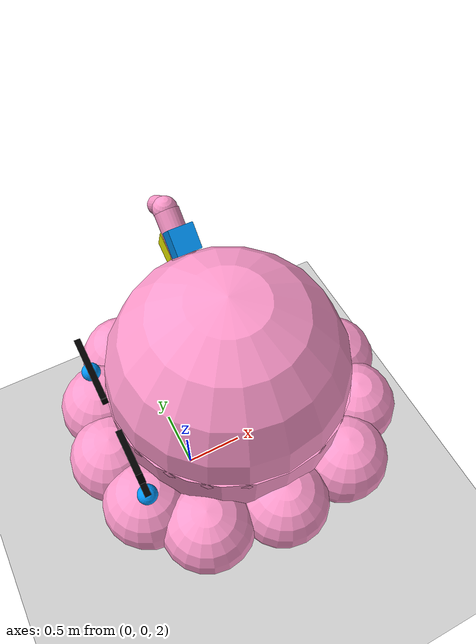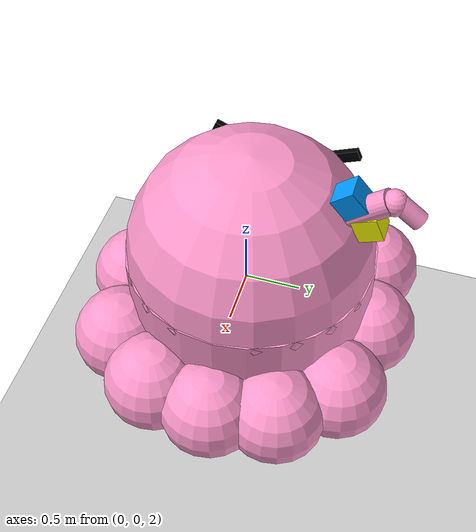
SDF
<?xml version="1.0" ?>
	<sdf version="1.8">
    		<world name="car_world">
        		<physics name="1ms" type="ignored">
            			<max_step_size>0.001</max_step_size>
            			<real_time_factor>1.0</real_time_factor>
        		</physics>
        		<plugin filename="libignition-gazebo-physics-system.so" name="ignition::gazebo::systems::Physics"></plugin>
        		<plugin filename="libignition-gazebo-user-commands-system.so" name="ignition::gazebo::systems::UserCommands"></plugin>
        		<plugin filename="libignition-gazebo-scene-broadcaster-system.so" name="ignition::gazebo::systems::SceneBroadcaster"></plugin>

        		<light type="directional" name="sun">
            			<cast_shadows>true</cast_shadows>
            			<pose>0 0 10 0 0 0</pose>
            			<diffuse>0.8 0.8 0.8 1</diffuse>
            			<specular>0.2 0.2 0.2 1</specular>
            			<attenuation>
                			<range>1000</range>
                			<constant>0.9</constant>
                			<linear>0.01</linear>
                			<quadratic>0.001</quadratic>
            			</attenuation>
            			<direction>-0.5 0.1 -0.9</direction>
        		</light>

        		<model name="ground_plane">
            			<static>true</static>
            			<link name="link">
                			<collision name="collision">
                				<geometry>
                    					<plane>
                    						<normal>0 0 1</normal>
                    					</plane>
                				</geometry>
                			</collision>
                			<visual name="visual">
                				<geometry>
                    					<plane>
                    						<normal>0 0 1</normal>
                    						<size>100 100</size>
                    					</plane>
                				</geometry>
                				<material>
                    					<ambient>0.8 0.8 0.8 1</ambient>
                    					<diffuse>0.8 0.8 0.8 1</diffuse>
                    					<specular>0.8 0.8 0.8 1</specular>
                				</material>
                			</visual>
            			</link>
        		</model>

        		<model name='bocchi' canonical_link="body">
        			<pose relative_to='world'> 0 0 3 0 0 0</pose>
        			<link name="body">
        				<pose relative_to='__model__'>0.5 0.2 0 0 0 0</pose>
        				<inertial>
        					<mass>1.14395</mass>
        					<inertia>
        						<ixx>0.095329</ixx>
                            				<ixy>0</ixy>
                            				<ixz>0</ixz>
                            				<iyy>0.381317</iyy>
                           				<iyz>0</iyz>
                            				<izz>0.476646</izz>
                            			</inertia>
                          		</inertial>

                            		<visual name='head'>
                            			<geometry>
                            				<sphere>
                            					<radius>1</radius>
                            				</sphere>
                            			</geometry>
                            			<material>
                            				<ambient>1.0 0.6 0.8 1</ambient>
                            				<diffuse>1.0 0.6 0.8 1</diffuse>
                            				<specular>0.0 0.0 1.0 1</specular>
                            			</material>
                            		</visual>

                            		<visual name="neck">
                            			<pose relative_to="body">0 0 -0.35 0 0 0</pose>
                            			<geometry>
                            				<cylinder>
                            					<radius>1</radius>
                            					<length>0.8</length>
                            				</cylinder>
                            			</geometry>
                            			<material>
                            				<ambient>1.0 0.6 0.8 1</ambient>
                            				<diffuse>1.0 0.6 0.8 1</diffuse>
                            				<specular>0.0 0.0 1.0 1</specular>
                            			</material>
                            		</visual>

                            		<visual name="ft_sup">
                            			<pose relative_to="body">0 0 -0.8 0 0 0</pose>
                            			<geometry>
                            				<cylinder>
                            					<radius>1.1</radius>
                            					<length>0.3</length>
                            				</cylinder>
                            			</geometry>
                            			<material>
                            				<ambient>1.0 0.6 0.8 1</ambient>
                            				<diffuse>1.0 0.6 0.8 1</diffuse>
                            				<specular>0.0 0.0 1.0 1</specular>
                            			</material>
                            		</visual>

                            		<visual name='ft_r_1'>
                            			<pose relative_to="body">-1 0.5 -0.65 0 0 0</pose>
                            			<geometry>
                            				<sphere>
                            					<radius>0.4</radius>
                            				</sphere>
                            			</geometry>
                            			<material>
                            				<ambient>1.0 0.6 0.8 1</ambient>
                            				<diffuse>1.0 0.6 0.8 1</diffuse>
                            				<specular>0.0 0.0 1.0 1</specular>
                            			</material>
                            		</visual>

                            		<visual name='ft_r_2'>
                            			<pose relative_to="body">-0.65 0.9 -0.65 0 0 0</pose>
                            			<geometry>
                            				<sphere>
                            					<radius>0.4</radius>
                            				</sphere>
                            			</geometry>
                            			<material>
                            				<ambient>1.0 0.6 0.8 1</ambient>
                            				<diffuse>1.0 0.6 0.8 1</diffuse>
                            				<specular>0.0 0.0 1.0 1</specular>
                            			</material>
                            		</visual>

                            		<visual name='ft_r_3'>
                            			<pose relative_to="body">0 1 -0.65 0 0 0</pose>
                            			<geometry>
                            				<sphere>
                            					<radius>0.4</radius>
                            				</sphere>
                            			</geometry>
                            			<material>
                            				<ambient>1.0 0.6 0.8 1</ambient>
                            				<diffuse>1.0 0.6 0.8 1</diffuse>
                            				<specular>0.0 0.0 1.0 1</specular>
                            			</material>
                            		</visual>

                            		<visual name='ft_r_4'>
                            			<pose relative_to="body">1 0.5 -0.65 0 0 0</pose>
                            			<geometry>
                            				<sphere>
                            					<radius>0.4</radius>
                            				</sphere>
                            			</geometry>
                            			<material>
                            				<ambient>1.0 0.6 0.8 1</ambient>
                            				<diffuse>1.0 0.6 0.8 1</diffuse>
                            				<specular>0.0 0.0 1.0 1</specular>
                            			</material>
                            		</visual>

                            		<visual name='ft_r_5'>
                            			<pose relative_to="body">0.65 0.9 -0.65 0 0 0</pose>
                            			<geometry>
                            				<sphere>
                            					<radius>0.4</radius>
                            				</sphere>
                            			</geometry>
                            			<material>
                            				<ambient>1.0 0.6 0.8 1</ambient>
                            				<diffuse>1.0 0.6 0.8 1</diffuse>
                            				<specular>0.0 0.0 1.0 1</specular>
                            			</material>
                            		</visual>

                            		<visual name='ft_l_1'>
                            			<pose relative_to="body">-1 -0.5 -0.65 0 0 0</pose>
                            			<geometry>
                            				<sphere>
                            					<radius>0.4</radius>
                            				</sphere>
                            			</geometry>
                            			<material>
                            				<ambient>1.0 0.6 0.8 1</ambient>
                            				<diffuse>1.0 0.6 0.8 1</diffuse>
                            				<specular>0.0 0.0 1.0 1</specular>
                            			</material>
                            		</visual>

                            		<visual name='ft_l_2'>
                            			<pose relative_to="body">-0.65 -0.9 -0.65 0 0 0</pose>
                            			<geometry>
                            				<sphere>
                            					<radius>0.4</radius>
                            				</sphere>
                            			</geometry>
                            			<material>
                            				<ambient>1.0 0.6 0.8 1</ambient>
                            				<diffuse>1.0 0.6 0.8 1</diffuse>
                            				<specular>0.0 0.0 1.0 1</specular>
                            			</material>
                            		</visual>

                            		<visual name='ft_l_3'>
                            			<pose relative_to="body">0 -1 -0.65 0 0 0</pose>
                            			<geometry>
                            				<sphere>
                            					<radius>0.4</radius>
                            				</sphere>
                            			</geometry>
                            			<material>
                            				<ambient>1.0 0.6 0.8 1</ambient>
                            				<diffuse>1.0 0.6 0.8 1</diffuse>
                            				<specular>0.0 0.0 1.0 1</specular>
                            			</material>
                            		</visual>

                            		<visual name='ft_l_4'>
                            			<pose relative_to="body">1 -0.5 -0.65 0 0 0</pose>
                            			<geometry>
                            				<sphere>
                            					<radius>0.4</radius>
                            				</sphere>
                            			</geometry>
                            			<material>
                            				<ambient>1.0 0.6 0.8 1</ambient>
                            				<diffuse>1.0 0.6 0.8 1</diffuse>
                            				<specular>0.0 0.0 1.0 1</specular>
                            			</material>
                            		</visual>

                            		<visual name='ft_l_5'>
                            			<pose relative_to="body">0.65 -0.9 -0.65 0 0 0</pose>
                            			<geometry>
                            				<sphere>
                            					<radius>0.4</radius>
                            				</sphere>
                            			</geometry>
                            			<material>
                            				<ambient>1.0 0.6 0.8 1</ambient>
                            				<diffuse>1.0 0.6 0.8 1</diffuse>
                            				<specular>0.0 0.0 1.0 1</specular>
                            			</material>
                            		</visual>

                            		<visual name='ft_ct_1'>
                            			<pose relative_to="body">1.1 0 -0.65 0 0 0</pose>
                            			<geometry>
                            				<sphere>
                            					<radius>0.4</radius>
                            				</sphere>
                            			</geometry>
                            			<material>
                            				<ambient>1.0 0.6 0.8 1</ambient>
                            				<diffuse>1.0 0.6 0.8 1</diffuse>
                            				<specular>0.0 0.0 1.0 1</specular>
                            			</material>
                            		</visual>

                            		<visual name='ft_ct_2'>
                            			<pose relative_to="body">-1.1 0 -0.65 0 0 0</pose>
                            			<geometry>
                            				<sphere>
                            					<radius>0.4</radius>
                            				</sphere>
                            			</geometry>
                            			<material>
                            				<ambient>1.0 0.6 0.8 1</ambient>
                            				<diffuse>1.0 0.6 0.8 1</diffuse>
                            				<specular>0.0 0.0 1.0 1</specular>
                            			</material>
                            		</visual>

                            		<visual name="up_r_eye">
                            			<pose relative_to="body">-1 0.4 0.2 0.4 0 0</pose>
                            			<geometry>
                            				<box>
                            					<size>0.05 0.5 0.1</size>
                            				</box>
                            			</geometry>
                            			<material>
                            				<ambient>0 0 0 1</ambient>
                            				<diffuse>0 0 0 1</diffuse>
                            				<specular>0.0 0.0 1.0 1</specular>
                            			</material>
                            		</visual>

                            		<visual name="dwn_r_eye">
                            			<pose relative_to="body">-1 0.4 0 -0.4 0 0</pose>
                            			<geometry>
                            				<box>
                            					<size>0.05 0.5 0.1</size>
                            				</box>
                            			</geometry>
                            			<material>
                            				<ambient>0 0 0 1</ambient>
                            				<diffuse>0 0 0 1</diffuse>
                            				<specular>0.0 0.0 1.0 1</specular>
                            			</material>
                            		</visual>

                            		<visual name="up_l_eye">
                            			<pose relative_to="body">-1 -0.4 0.2 -0.4 0 0</pose>
                            			<geometry>
                            				<box>
                            					<size>0.05 0.5 0.1</size>
                            				</box>
                            			</geometry>
                            			<material>
                            				<ambient>0 0 0 1</ambient>
                            				<diffuse>0 0 0 1</diffuse>
                            				<specular>0.0 0.0 1.0 1</specular>
                            			</material>
                            		</visual>

                            		<visual name="dwn_l_eye">
                            			<pose relative_to="body">-1 -0.4 0 0.4 0 0</pose>
                            			<geometry>
                            				<box>
                            					<size>0.05 0.5 0.1</size>
                            				</box>
                            			</geometry>
                            			<material>
                            				<ambient>0 0 0 1</ambient>
                            				<diffuse>0 0 0 1</diffuse>
                            				<specular>0.0 0.0 1.0 1</specular>
                            			</material>
                            		</visual>

                            		<visual name="tear_r">
                            			<pose relative_to="body">-1 0.6 -0.15 0.4 0 0</pose>
                            			<geometry>
                            				<sphere>
                            					<radius>0.08</radius>
                            				</sphere>
                            			</geometry>
                            			<material>
                            				<ambient>0 0.6 1 1</ambient>
                            				<diffuse>0 0.6 1 1</diffuse>
                            				<specular>0.0 0.0 1.0 1</specular>
                            			</material>
                            		</visual>

                            		<visual name="tear_l">
                            			<pose relative_to="body">-1 -0.6 -0.15 0.4 0 0</pose>
                            			<geometry>
                            				<sphere>
                            					<radius>0.08</radius>
                            				</sphere>
                            			</geometry>
                            			<material>
                            				<ambient>0 0.6 1 1</ambient>
                            				<diffuse>0 0.6 1 1</diffuse>
                            				<specular>0.0 0.0 1.0 1</specular>
                            			</material>
                            		</visual>

                            		<visual name="y_hair_acc">
                            			<pose relative_to="body">0 0.9 0.6 0.4 0 0</pose>
                            			<geometry>
                            				<box>
                            					<size>0.2 0.2 0.2</size>
                            				</box>
                            			</geometry>
                            			<material>
                            				<ambient>1 1 0 1</ambient>
                            				<diffuse>1 1 0 1</diffuse>
                            				<specular>0.0 0.0 1.0 1</specular>
                            			</material>
                            		</visual>

                            		<visual name="b_hair_acc">
                            			<pose relative_to="body">0 0.75 0.8 0.7 0 0</pose>
                            			<geometry>
                            				<box>
                            					<size>0.2 0.2 0.2</size>
                            				</box>
                            			</geometry>
                            			<material>
                            				<ambient>0 0.6 1 1</ambient>
                            				<diffuse>0 0.6 1 1</diffuse>
                            				<specular>0.0 0.0 1.0 1</specular>
                            			</material>
                            		</visual>

                            		<visual name="hair_p1">
                            			<pose relative_to="body">0 0.83 0.7 -0.9 0 0</pose>
                            			<geometry>
                            				<cylinder>
                            					<radius>0.1</radius>
                            					<length>0.5</length>
                            				</cylinder>
                            			</geometry>
                            			<material>
                            				<ambient>1.0 0.6 0.8 1</ambient>
                            				<diffuse>1.0 0.6 0.8 1</diffuse>
                            				<specular>0.0 0.0 1.0 1</specular>
                            			</material>
                            		</visual>

                            		<visual name='hair_p2'>
                            			<pose relative_to="body">0 1.05 0.85 0 0 0</pose>
                            			<geometry>
                            				<sphere>
                            					<radius>0.1</radius>
                            				</sphere>
                            			</geometry>
                            			<material>
                            				<ambient>1.0 0.6 0.8 1</ambient>
                            				<diffuse>1.0 0.6 0.8 1</diffuse>
                            				<specular>0.0 0.0 1.0 1</specular>
                            			</material>
                            		</visual>

                            		<visual name="hair_p3">
                            			<pose relative_to="body">0 1.15 0.8 0.9 0 0</pose>
                            			<geometry>
                            				<cylinder>
                            					<radius>0.075</radius>
                            					<length>0.25</length>
                            				</cylinder>
                            			</geometry>
                            			<material>
                            				<ambient>1.0 0.6 0.8 1</ambient>
                            				<diffuse>1.0 0.6 0.8 1</diffuse>
                            				<specular>0.0 0.0 1.0 1</specular>
                            			</material>
                            		</visual>

                            		<collision name='collision'>
                            			<geometry>
                            				<sphere>
                            					<radius>1</radius>
							</sphere>
                            			</geometry>
                            		</collision>
        			</link>
        		</model>
    		</world>
	</sdf>
